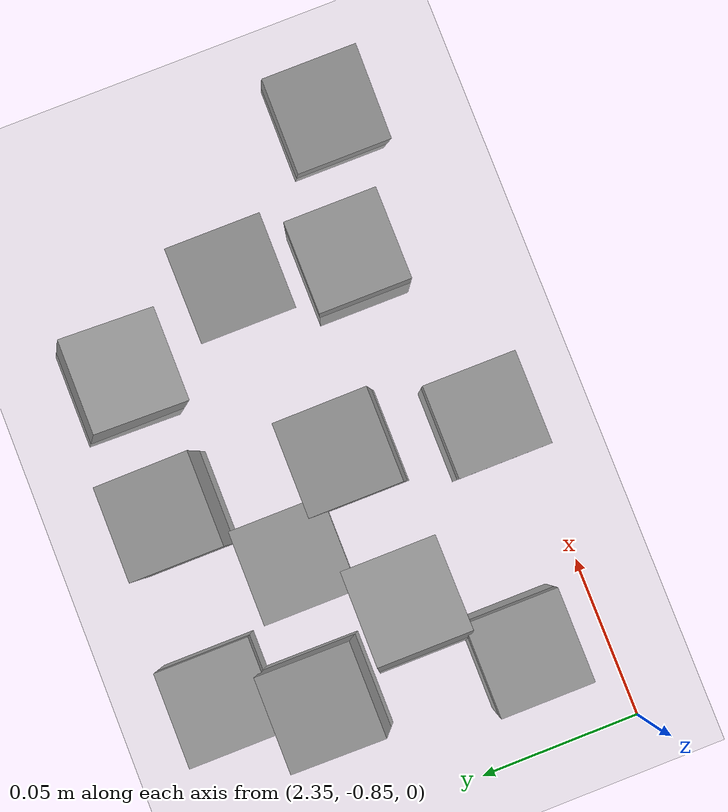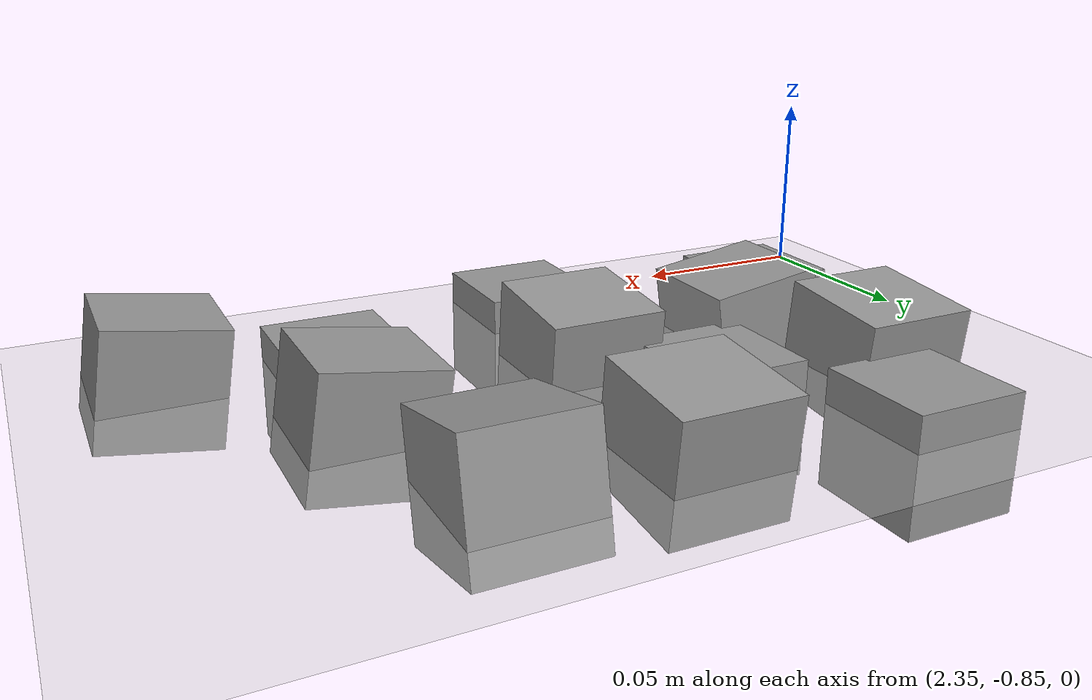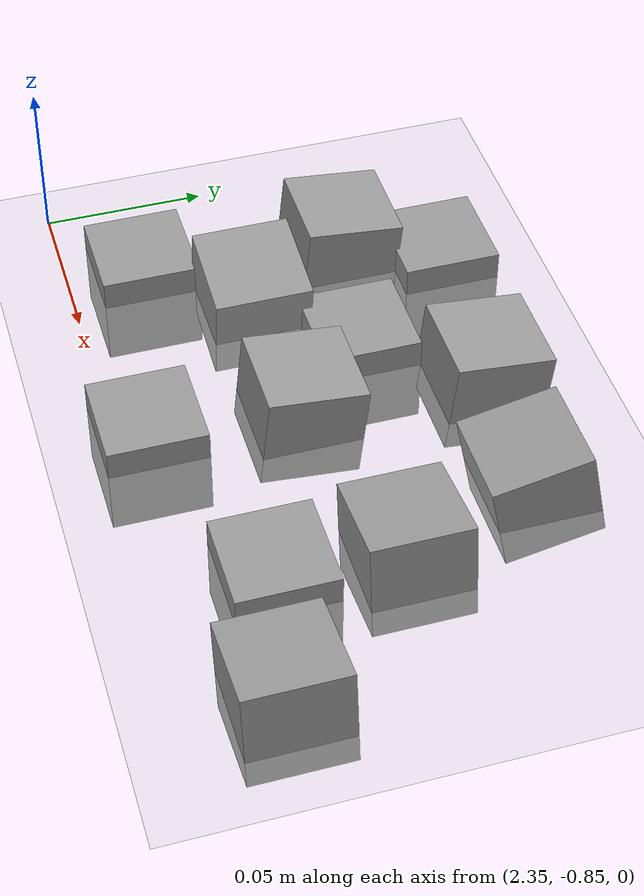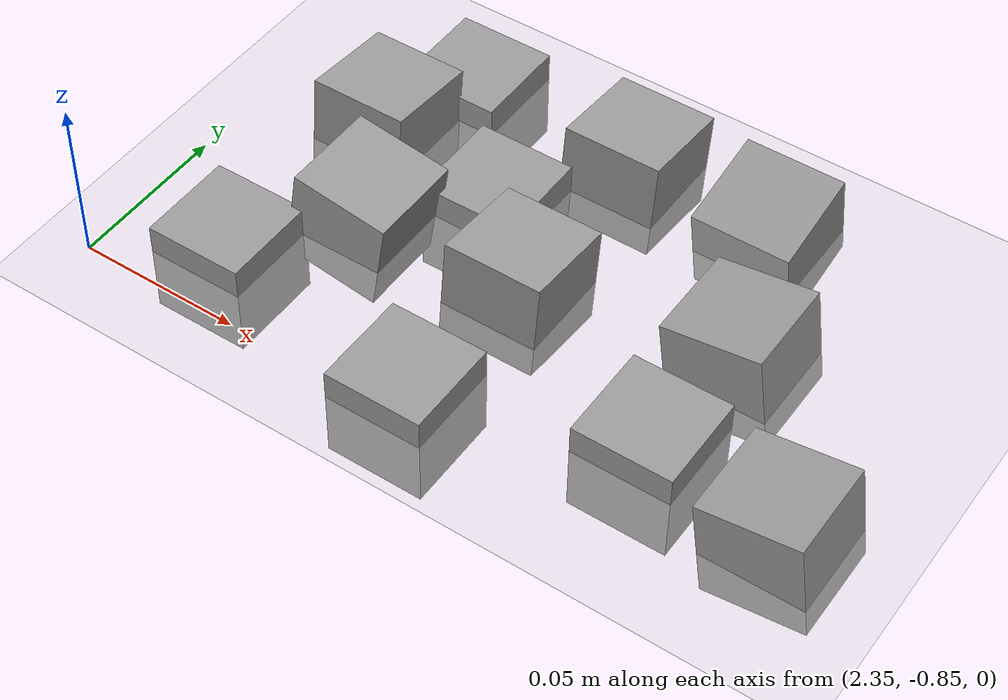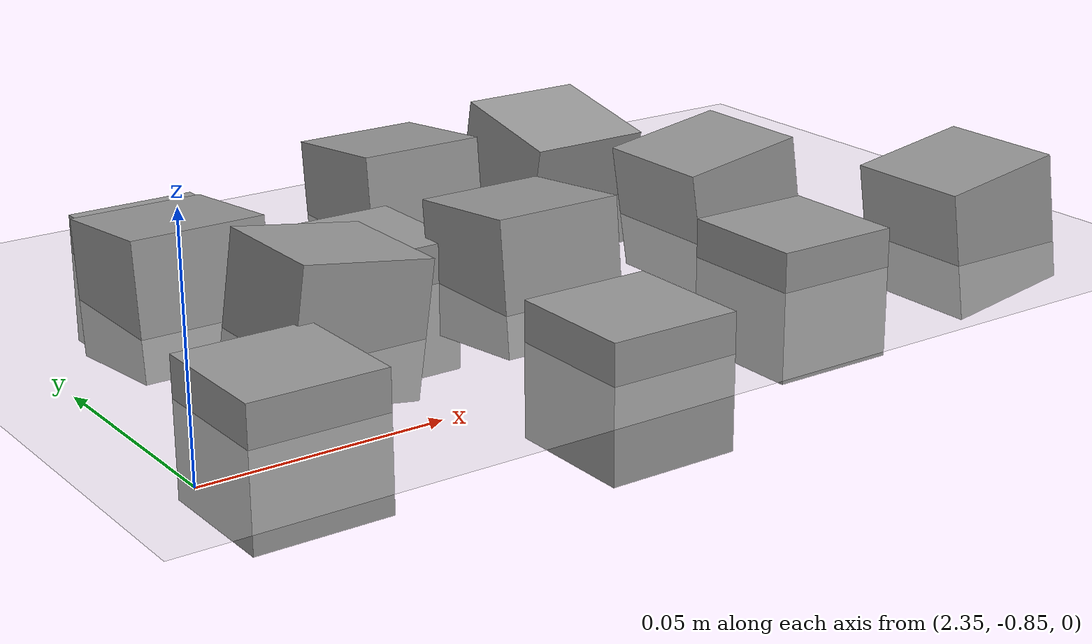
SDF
<sdf version="1.7">
 <world name="default">
  <model name="ground_plane">
   <static>1</static>
   <link name="link">
    <collision name="collision">
     <geometry><plane><normal>0 0 1</normal><size>100 100</size></plane></geometry>
     <surface><friction><ode><mu>100</mu><mu2>50</mu2></ode></friction></surface>
    </collision>
    <visual name="visual">
     <cast_shadows>0</cast_shadows>
     <geometry><plane><normal>0 0 1</normal><size>100 100</size></plane></geometry>
     <material>
      <script><uri>file://media/materials/scripts/gazebo.material</uri><name>Gazebo/Grey</name></script>
     </material>
    </visual>
   </link>
  </model>
  <model name="stone_road_6">
   <link name="link_0_clone_2_clone_0">
    <inertial>
     <mass>1</mass>
     <inertia>
      <ixx>0.166667</ixx>
      <ixy>0</ixy>
      <ixz>0</ixz>
      <iyy>0.166667</iyy>
      <iyz>0</iyz>
      <izz>0.166667</izz>
     </inertia>
    </inertial>
    <pose>0.026852 -0.0813 0.003778 0 0.15 0</pose>
    <kinematic>1</kinematic>
    <visual name="visual">
     <geometry><box><size>0.03 0.03 0.03</size></box></geometry>
     <material>
      <lighting>1</lighting>
      <script><uri>file://media/materials/scripts/gazebo.material</uri><name>Gazebo/Grey</name></script>
      <shader type="pixel"><normal_map>__default__</normal_map></shader>
      <ambient>0.3 0.3 0.3 1</ambient>
      <diffuse>0.7 0.7 0.7 1</diffuse>
      <specular>0.01 0.01 0.01 1</specular>
      <emissive>0 0 0 1</emissive>
     </material>
    </visual>
    <collision name="collision">
     <geometry><box><size>0.03 0.03 0.03</size></box></geometry>
     <surface>
      <friction>
       <ode><mu>1</mu><mu2>1</mu2><fdir1>0 0 0</fdir1><slip1>0</slip1><slip2>0</slip2></ode>
       <torsional>
        <coefficient>1</coefficient>
        <patch_radius>0</patch_radius>
        <surface_radius>0</surface_radius>
        <use_patch_radius>1</use_patch_radius>
        <ode><slip>0</slip></ode>
       </torsional>
      </friction>
      <bounce><restitution_coefficient>0</restitution_coefficient><threshold>1e+06</threshold></bounce>
      <contact>
       <collide_without_contact>0</collide_without_contact>
       <collide_without_contact_bitmask>1</collide_without_contact_bitmask>
       <collide_bitmask>1</collide_bitmask>
       <ode>
        <soft_cfm>0</soft_cfm>
        <soft_erp>0.2</soft_erp>
        <kp>1e+13</kp>
        <kd>1</kd>
        <max_vel>0.01</max_vel>
        <min_depth>0</min_depth>
       </ode>
       <bullet>
        <split_impulse>1</split_impulse>
        <split_impulse_penetration_threshold>-0.01</split_impulse_penetration_threshold>
        <soft_cfm>0</soft_cfm>
        <soft_erp>0.2</soft_erp>
        <kp>1e+13</kp>
        <kd>1</kd>
       </bullet>
      </contact>
     </surface>
    </collision>
   </link>
   <link name="link_0_clone_2_clone_2_clone_13_clone_clone_16_clone_14">
    <inertial>
     <mass>1</mass>
     <inertia>
      <ixx>0.166667</ixx>
      <ixy>0</ixy>
      <ixz>0</ixz>
      <iyy>0.166667</iyy>
      <iyz>0</iyz>
      <izz>0.166667</izz>
     </inertia>
    </inertial>
    <pose>0.051911 -0.054424 -0.006222 0 -0 0</pose>
    <kinematic>1</kinematic>
    <visual name="visual">
     <geometry><box><size>0.03 0.03 0.03</size></box></geometry>
     <material>
      <lighting>1</lighting>
      <script><uri>file://media/materials/scripts/gazebo.material</uri><name>Gazebo/Grey</name></script>
      <shader type="pixel"><normal_map>__default__</normal_map></shader>
      <ambient>0.3 0.3 0.3 1</ambient>
      <diffuse>0.7 0.7 0.7 1</diffuse>
      <specular>0.01 0.01 0.01 1</specular>
      <emissive>0 0 0 1</emissive>
     </material>
    </visual>
    <collision name="collision">
     <geometry><box><size>0.03 0.03 0.03</size></box></geometry>
     <surface>
      <friction>
       <ode><mu>1</mu><mu2>1</mu2><fdir1>0 0 0</fdir1><slip1>0</slip1><slip2>0</slip2></ode>
       <torsional>
        <coefficient>1</coefficient>
        <patch_radius>0</patch_radius>
        <surface_radius>0</surface_radius>
        <use_patch_radius>1</use_patch_radius>
        <ode><slip>0</slip></ode>
       </torsional>
      </friction>
      <bounce><restitution_coefficient>0</restitution_coefficient><threshold>1e+06</threshold></bounce>
      <contact>
       <collide_without_contact>0</collide_without_contact>
       <collide_without_contact_bitmask>1</collide_without_contact_bitmask>
       <collide_bitmask>1</collide_bitmask>
       <ode>
        <soft_cfm>0</soft_cfm>
        <soft_erp>0.2</soft_erp>
        <kp>1e+13</kp>
        <kd>1</kd>
        <max_vel>0.01</max_vel>
        <min_depth>0</min_depth>
       </ode>
       <bullet>
        <split_impulse>1</split_impulse>
        <split_impulse_penetration_threshold>-0.01</split_impulse_penetration_threshold>
        <soft_cfm>0</soft_cfm>
        <soft_erp>0.2</soft_erp>
        <kp>1e+13</kp>
        <kd>1</kd>
       </bullet>
      </contact>
     </surface>
    </collision>
   </link>
   <link name="link_0_clone_2_clone_2_clone_13_clone_clone_16_clone_15">
    <inertial>
     <mass>1</mass>
     <inertia>
      <ixx>0.166667</ixx>
      <ixy>0</ixy>
      <ixz>0</ixz>
      <iyy>0.166667</iyy>
      <iyz>0</iyz>
      <izz>0.166667</izz>
     </inertia>
    </inertial>
    <pose>0.133032 -0.103459 -0.006222 0 -0 0</pose>
    <kinematic>1</kinematic>
    <visual name="visual">
     <geometry><box><size>0.03 0.03 0.03</size></box></geometry>
     <material>
      <lighting>1</lighting>
      <script><uri>file://media/materials/scripts/gazebo.material</uri><name>Gazebo/Grey</name></script>
      <shader type="pixel"><normal_map>__default__</normal_map></shader>
      <ambient>0.3 0.3 0.3 1</ambient>
      <diffuse>0.7 0.7 0.7 1</diffuse>
      <specular>0.01 0.01 0.01 1</specular>
      <emissive>0 0 0 1</emissive>
     </material>
    </visual>
    <collision name="collision">
     <geometry><box><size>0.03 0.03 0.03</size></box></geometry>
     <surface>
      <friction>
       <ode><mu>1</mu><mu2>1</mu2><fdir1>0 0 0</fdir1><slip1>0</slip1><slip2>0</slip2></ode>
       <torsional>
        <coefficient>1</coefficient>
        <patch_radius>0</patch_radius>
        <surface_radius>0</surface_radius>
        <use_patch_radius>1</use_patch_radius>
        <ode><slip>0</slip></ode>
       </torsional>
      </friction>
      <bounce><restitution_coefficient>0</restitution_coefficient><threshold>1e+06</threshold></bounce>
      <contact>
       <collide_without_contact>0</collide_without_contact>
       <collide_without_contact_bitmask>1</collide_without_contact_bitmask>
       <collide_bitmask>1</collide_bitmask>
       <ode>
        <soft_cfm>0</soft_cfm>
        <soft_erp>0.2</soft_erp>
        <kp>1e+13</kp>
        <kd>1</kd>
        <max_vel>0.01</max_vel>
        <min_depth>0</min_depth>
       </ode>
       <bullet>
        <split_impulse>1</split_impulse>
        <split_impulse_penetration_threshold>-0.01</split_impulse_penetration_threshold>
        <soft_cfm>0</soft_cfm>
        <soft_erp>0.2</soft_erp>
        <kp>1e+13</kp>
        <kd>1</kd>
       </bullet>
      </contact>
     </surface>
    </collision>
   </link>
   <link name="link_0_clone_2_clone_2_clone_13_clone_clone_16_clone_16">
    <inertial>
     <mass>1</mass>
     <inertia>
      <ixx>0.166667</ixx>
      <ixy>0</ixy>
      <ixz>0</ixz>
      <iyy>0.166667</iyy>
      <iyz>0</iyz>
      <izz>0.166667</izz>
     </inertia>
    </inertial>
    <pose>0.071475 -0.124425 -0.006222 0 -0 0</pose>
    <kinematic>1</kinematic>
    <visual name="visual">
     <geometry><box><size>0.03 0.03 0.03</size></box></geometry>
     <material>
      <lighting>1</lighting>
      <script><uri>file://media/materials/scripts/gazebo.material</uri><name>Gazebo/Grey</name></script>
      <shader type="pixel"><normal_map>__default__</normal_map></shader>
      <ambient>0.3 0.3 0.3 1</ambient>
      <diffuse>0.7 0.7 0.7 1</diffuse>
      <specular>0.01 0.01 0.01 1</specular>
      <emissive>0 0 0 1</emissive>
     </material>
    </visual>
    <collision name="collision">
     <geometry><box><size>0.03 0.03 0.03</size></box></geometry>
     <surface>
      <friction>
       <ode><mu>1</mu><mu2>1</mu2><fdir1>0 0 0</fdir1><slip1>0</slip1><slip2>0</slip2></ode>
       <torsional>
        <coefficient>1</coefficient>
        <patch_radius>0</patch_radius>
        <surface_radius>0</surface_radius>
        <use_patch_radius>1</use_patch_radius>
        <ode><slip>0</slip></ode>
       </torsional>
      </friction>
      <bounce><restitution_coefficient>0</restitution_coefficient><threshold>1e+06</threshold></bounce>
      <contact>
       <collide_without_contact>0</collide_without_contact>
       <collide_without_contact_bitmask>1</collide_without_contact_bitmask>
       <collide_bitmask>1</collide_bitmask>
       <ode>
        <soft_cfm>0</soft_cfm>
        <soft_erp>0.2</soft_erp>
        <kp>1e+13</kp>
        <kd>1</kd>
        <max_vel>0.01</max_vel>
        <min_depth>0</min_depth>
       </ode>
       <bullet>
        <split_impulse>1</split_impulse>
        <split_impulse_penetration_threshold>-0.01</split_impulse_penetration_threshold>
        <soft_cfm>0</soft_cfm>
        <soft_erp>0.2</soft_erp>
        <kp>1e+13</kp>
        <kd>1</kd>
       </bullet>
      </contact>
     </surface>
    </collision>
   </link>
   <link name="link_0_clone_2_clone_2_clone_13_clone_clone_16_clone_6">
    <inertial>
     <mass>1</mass>
     <inertia>
      <ixx>0.166667</ixx>
      <ixy>0</ixy>
      <ixz>0</ixz>
      <iyy>0.166667</iyy>
      <iyz>0</iyz>
      <izz>0.166667</izz>
     </inertia>
    </inertial>
    <pose>0.020774 -0.018727 -0.006222 0 -0 0</pose>
    <kinematic>1</kinematic>
    <visual name="visual">
     <geometry><box><size>0.03 0.03 0.03</size></box></geometry>
     <material>
      <lighting>1</lighting>
      <script><uri>file://media/materials/scripts/gazebo.material</uri><name>Gazebo/Grey</name></script>
      <shader type="pixel"><normal_map>__default__</normal_map></shader>
      <ambient>0.3 0.3 0.3 1</ambient>
      <diffuse>0.7 0.7 0.7 1</diffuse>
      <specular>0.01 0.01 0.01 1</specular>
      <emissive>0 0 0 1</emissive>
     </material>
    </visual>
    <collision name="collision">
     <geometry><box><size>0.03 0.03 0.03</size></box></geometry>
     <surface>
      <friction>
       <ode><mu>1</mu><mu2>1</mu2><fdir1>0 0 0</fdir1><slip1>0</slip1><slip2>0</slip2></ode>
       <torsional>
        <coefficient>1</coefficient>
        <patch_radius>0</patch_radius>
        <surface_radius>0</surface_radius>
        <use_patch_radius>1</use_patch_radius>
        <ode><slip>0</slip></ode>
       </torsional>
      </friction>
      <bounce><restitution_coefficient>0</restitution_coefficient><threshold>1e+06</threshold></bounce>
      <contact>
       <collide_without_contact>0</collide_without_contact>
       <collide_without_contact_bitmask>1</collide_without_contact_bitmask>
       <collide_bitmask>1</collide_bitmask>
       <ode>
        <soft_cfm>0</soft_cfm>
        <soft_erp>0.2</soft_erp>
        <kp>1e+13</kp>
        <kd>1</kd>
        <max_vel>0.01</max_vel>
        <min_depth>0</min_depth>
       </ode>
       <bullet>
        <split_impulse>1</split_impulse>
        <split_impulse_penetration_threshold>-0.01</split_impulse_penetration_threshold>
        <soft_cfm>0</soft_cfm>
        <soft_erp>0.2</soft_erp>
        <kp>1e+13</kp>
        <kd>1</kd>
       </bullet>
      </contact>
     </surface>
    </collision>
   </link>
   <link name="link_0_clone_2_clone_2_clone_13_clone_clone_16_clone_7">
    <inertial>
     <mass>1</mass>
     <inertia>
      <ixx>0.166667</ixx>
      <ixy>0</ixy>
      <ixz>0</ixz>
      <iyy>0.166667</iyy>
      <iyz>0</iyz>
      <izz>0.166667</izz>
     </inertia>
    </inertial>
    <pose>0.000883 -0.109959 -0.006222 0 -0 0</pose>
    <kinematic>1</kinematic>
    <visual name="visual">
     <geometry><box><size>0.03 0.03 0.03</size></box></geometry>
     <material>
      <lighting>1</lighting>
      <script><uri>file://media/materials/scripts/gazebo.material</uri><name>Gazebo/Grey</name></script>
      <shader type="pixel"><normal_map>__default__</normal_map></shader>
      <ambient>0.3 0.3 0.3 1</ambient>
      <diffuse>0.7 0.7 0.7 1</diffuse>
      <specular>0.01 0.01 0.01 1</specular>
      <emissive>0 0 0 1</emissive>
     </material>
    </visual>
    <collision name="collision">
     <geometry><box><size>0.03 0.03 0.03</size></box></geometry>
     <surface>
      <friction>
       <ode><mu>1</mu><mu2>1</mu2><fdir1>0 0 0</fdir1><slip1>0</slip1><slip2>0</slip2></ode>
       <torsional>
        <coefficient>1</coefficient>
        <patch_radius>0</patch_radius>
        <surface_radius>0</surface_radius>
        <use_patch_radius>1</use_patch_radius>
        <ode><slip>0</slip></ode>
       </torsional>
      </friction>
      <bounce><restitution_coefficient>0</restitution_coefficient><threshold>1e+06</threshold></bounce>
      <contact>
       <collide_without_contact>0</collide_without_contact>
       <collide_without_contact_bitmask>1</collide_without_contact_bitmask>
       <collide_bitmask>1</collide_bitmask>
       <ode>
        <soft_cfm>0</soft_cfm>
        <soft_erp>0.2</soft_erp>
        <kp>1e+13</kp>
        <kd>1</kd>
        <max_vel>0.01</max_vel>
        <min_depth>0</min_depth>
       </ode>
       <bullet>
        <split_impulse>1</split_impulse>
        <split_impulse_penetration_threshold>-0.01</split_impulse_penetration_threshold>
        <soft_cfm>0</soft_cfm>
        <soft_erp>0.2</soft_erp>
        <kp>1e+13</kp>
        <kd>1</kd>
       </bullet>
      </contact>
     </surface>
    </collision>
   </link>
   <link name="link_0_clone_2_clone_2_clone_13_clone_clone_4">
    <inertial>
     <mass>1</mass>
     <inertia>
      <ixx>0.166667</ixx>
      <ixy>0</ixy>
      <ixz>0</ixz>
      <iyy>0.166667</iyy>
      <iyz>0</iyz>
      <izz>0.166667</izz>
     </inertia>
    </inertial>
    <pose>0.078198 -0.024053 0.003778 -0.1 0 0</pose>
    <kinematic>1</kinematic>
    <visual name="visual">
     <geometry><box><size>0.03 0.03 0.03</size></box></geometry>
     <material>
      <lighting>1</lighting>
      <script><uri>file://media/materials/scripts/gazebo.material</uri><name>Gazebo/Grey</name></script>
      <shader type="pixel"><normal_map>__default__</normal_map></shader>
      <ambient>0.3 0.3 0.3 1</ambient>
      <diffuse>0.7 0.7 0.7 1</diffuse>
      <specular>0.01 0.01 0.01 1</specular>
      <emissive>0 0 0 1</emissive>
     </material>
    </visual>
    <collision name="collision">
     <geometry><box><size>0.03 0.03 0.03</size></box></geometry>
     <surface>
      <friction>
       <ode><mu>1</mu><mu2>1</mu2><fdir1>0 0 0</fdir1><slip1>0</slip1><slip2>0</slip2></ode>
       <torsional>
        <coefficient>1</coefficient>
        <patch_radius>0</patch_radius>
        <surface_radius>0</surface_radius>
        <use_patch_radius>1</use_patch_radius>
        <ode><slip>0</slip></ode>
       </torsional>
      </friction>
      <bounce><restitution_coefficient>0</restitution_coefficient><threshold>1e+06</threshold></bounce>
      <contact>
       <collide_without_contact>0</collide_without_contact>
       <collide_without_contact_bitmask>1</collide_without_contact_bitmask>
       <collide_bitmask>1</collide_bitmask>
       <ode>
        <soft_cfm>0</soft_cfm>
        <soft_erp>0.2</soft_erp>
        <kp>1e+13</kp>
        <kd>1</kd>
        <max_vel>0.01</max_vel>
        <min_depth>0</min_depth>
       </ode>
       <bullet>
        <split_impulse>1</split_impulse>
        <split_impulse_penetration_threshold>-0.01</split_impulse_penetration_threshold>
        <soft_cfm>0</soft_cfm>
        <soft_erp>0.2</soft_erp>
        <kp>1e+13</kp>
        <kd>1</kd>
       </bullet>
      </contact>
     </surface>
    </collision>
   </link>
   <link name="link_0_clone_2_clone_2_clone_13_clone_clone_5">
    <inertial>
     <mass>1</mass>
     <inertia>
      <ixx>0.166667</ixx>
      <ixy>0</ixy>
      <ixz>0</ixz>
      <iyy>0.166667</iyy>
      <iyz>0</iyz>
      <izz>0.166667</izz>
     </inertia>
    </inertial>
    <pose>0.076743 -0.079785 0.003778 -0.1 0 0</pose>
    <kinematic>1</kinematic>
    <visual name="visual">
     <geometry><box><size>0.03 0.03 0.03</size></box></geometry>
     <material>
      <lighting>1</lighting>
      <script><uri>file://media/materials/scripts/gazebo.material</uri><name>Gazebo/Grey</name></script>
      <shader type="pixel"><normal_map>__default__</normal_map></shader>
      <ambient>0.3 0.3 0.3 1</ambient>
      <diffuse>0.7 0.7 0.7 1</diffuse>
      <specular>0.01 0.01 0.01 1</specular>
      <emissive>0 0 0 1</emissive>
     </material>
    </visual>
    <collision name="collision">
     <geometry><box><size>0.03 0.03 0.03</size></box></geometry>
     <surface>
      <friction>
       <ode><mu>1</mu><mu2>1</mu2><fdir1>0 0 0</fdir1><slip1>0</slip1><slip2>0</slip2></ode>
       <torsional>
        <coefficient>1</coefficient>
        <patch_radius>0</patch_radius>
        <surface_radius>0</surface_radius>
        <use_patch_radius>1</use_patch_radius>
        <ode><slip>0</slip></ode>
       </torsional>
      </friction>
      <bounce><restitution_coefficient>0</restitution_coefficient><threshold>1e+06</threshold></bounce>
      <contact>
       <collide_without_contact>0</collide_without_contact>
       <collide_without_contact_bitmask>1</collide_without_contact_bitmask>
       <collide_bitmask>1</collide_bitmask>
       <ode>
        <soft_cfm>0</soft_cfm>
        <soft_erp>0.2</soft_erp>
        <kp>1e+13</kp>
        <kd>1</kd>
        <max_vel>0.01</max_vel>
        <min_depth>0</min_depth>
       </ode>
       <bullet>
        <split_impulse>1</split_impulse>
        <split_impulse_penetration_threshold>-0.01</split_impulse_penetration_threshold>
        <soft_cfm>0</soft_cfm>
        <soft_erp>0.2</soft_erp>
        <kp>1e+13</kp>
        <kd>1</kd>
       </bullet>
      </contact>
     </surface>
    </collision>
   </link>
   <link name="link_0_clone_2_clone_2_clone_13_clone_clone_6">
    <inertial>
     <mass>1</mass>
     <inertia>
      <ixx>0.166667</ixx>
      <ixy>0</ixy>
      <ixz>0</ixz>
      <iyy>0.166667</iyy>
      <iyz>0</iyz>
      <izz>0.166667</izz>
     </inertia>
    </inertial>
    <pose>0.009445 -0.048118 0.003778 -0.1 0 0</pose>
    <kinematic>1</kinematic>
    <visual name="visual">
     <geometry><box><size>0.03 0.03 0.03</size></box></geometry>
     <material>
      <lighting>1</lighting>
      <script><uri>file://media/materials/scripts/gazebo.material</uri><name>Gazebo/Grey</name></script>
      <shader type="pixel"><normal_map>__default__</normal_map></shader>
      <ambient>0.3 0.3 0.3 1</ambient>
      <diffuse>0.7 0.7 0.7 1</diffuse>
      <specular>0.01 0.01 0.01 1</specular>
      <emissive>0 0 0 1</emissive>
     </material>
    </visual>
    <collision name="collision">
     <geometry><box><size>0.03 0.03 0.03</size></box></geometry>
     <surface>
      <friction>
       <ode><mu>1</mu><mu2>1</mu2><fdir1>0 0 0</fdir1><slip1>0</slip1><slip2>0</slip2></ode>
       <torsional>
        <coefficient>1</coefficient>
        <patch_radius>0</patch_radius>
        <surface_radius>0</surface_radius>
        <use_patch_radius>1</use_patch_radius>
        <ode><slip>0</slip></ode>
       </torsional>
      </friction>
      <bounce><restitution_coefficient>0</restitution_coefficient><threshold>1e+06</threshold></bounce>
      <contact>
       <collide_without_contact>0</collide_without_contact>
       <collide_without_contact_bitmask>1</collide_without_contact_bitmask>
       <collide_bitmask>1</collide_bitmask>
       <ode>
        <soft_cfm>0</soft_cfm>
        <soft_erp>0.2</soft_erp>
        <kp>1e+13</kp>
        <kd>1</kd>
        <max_vel>0.01</max_vel>
        <min_depth>0</min_depth>
       </ode>
       <bullet>
        <split_impulse>1</split_impulse>
        <split_impulse_penetration_threshold>-0.01</split_impulse_penetration_threshold>
        <soft_cfm>0</soft_cfm>
        <soft_erp>0.2</soft_erp>
        <kp>1e+13</kp>
        <kd>1</kd>
       </bullet>
      </contact>
     </surface>
    </collision>
   </link>
   <link name="link_0_clone_2_clone_2_clone_5">
    <inertial>
     <mass>1</mass>
     <inertia>
      <ixx>0.166667</ixx>
      <ixy>0</ixy>
      <ixz>0</ixz>
      <iyy>0.166667</iyy>
      <iyz>0</iyz>
      <izz>0.166667</izz>
     </inertia>
    </inertial>
    <pose>0.13842 -0.067468 0.003778 0 -0.15 0</pose>
    <kinematic>1</kinematic>
    <visual name="visual">
     <geometry><box><size>0.03 0.03 0.03</size></box></geometry>
     <material>
      <lighting>1</lighting>
      <script><uri>file://media/materials/scripts/gazebo.material</uri><name>Gazebo/Grey</name></script>
      <shader type="pixel"><normal_map>__default__</normal_map></shader>
      <ambient>0.3 0.3 0.3 1</ambient>
      <diffuse>0.7 0.7 0.7 1</diffuse>
      <specular>0.01 0.01 0.01 1</specular>
      <emissive>0 0 0 1</emissive>
     </material>
    </visual>
    <collision name="collision">
     <geometry><box><size>0.03 0.03 0.03</size></box></geometry>
     <surface>
      <friction>
       <ode><mu>1</mu><mu2>1</mu2><fdir1>0 0 0</fdir1><slip1>0</slip1><slip2>0</slip2></ode>
       <torsional>
        <coefficient>1</coefficient>
        <patch_radius>0</patch_radius>
        <surface_radius>0</surface_radius>
        <use_patch_radius>1</use_patch_radius>
        <ode><slip>0</slip></ode>
       </torsional>
      </friction>
      <bounce><restitution_coefficient>0</restitution_coefficient><threshold>1e+06</threshold></bounce>
      <contact>
       <collide_without_contact>0</collide_without_contact>
       <collide_without_contact_bitmask>1</collide_without_contact_bitmask>
       <collide_bitmask>1</collide_bitmask>
       <ode>
        <soft_cfm>0</soft_cfm>
        <soft_erp>0.2</soft_erp>
        <kp>1e+13</kp>
        <kd>1</kd>
        <max_vel>0.01</max_vel>
        <min_depth>0</min_depth>
       </ode>
       <bullet>
        <split_impulse>1</split_impulse>
        <split_impulse_penetration_threshold>-0.01</split_impulse_penetration_threshold>
        <soft_cfm>0</soft_cfm>
        <soft_erp>0.2</soft_erp>
        <kp>1e+13</kp>
        <kd>1</kd>
       </bullet>
      </contact>
     </surface>
    </collision>
   </link>
   <link name="link_0_clone_2_clone_2_clone_7">
    <inertial>
     <mass>1</mass>
     <inertia>
      <ixx>0.166667</ixx>
      <ixy>0</ixy>
      <ixz>0</ixz>
      <iyy>0.166667</iyy>
      <iyz>0</iyz>
      <izz>0.166667</izz>
     </inertia>
    </inertial>
    <pose>0.175499 -0.112442 0.003778 0 -0.15 0</pose>
    <kinematic>1</kinematic>
    <visual name="visual">
     <geometry><box><size>0.03 0.03 0.03</size></box></geometry>
     <material>
      <lighting>1</lighting>
      <script><uri>file://media/materials/scripts/gazebo.material</uri><name>Gazebo/Grey</name></script>
      <shader type="pixel"><normal_map>__default__</normal_map></shader>
      <ambient>0.3 0.3 0.3 1</ambient>
      <diffuse>0.7 0.7 0.7 1</diffuse>
      <specular>0.01 0.01 0.01 1</specular>
      <emissive>0 0 0 1</emissive>
     </material>
    </visual>
    <collision name="collision">
     <geometry><box><size>0.03 0.03 0.03</size></box></geometry>
     <surface>
      <friction>
       <ode><mu>1</mu><mu2>1</mu2><fdir1>0 0 0</fdir1><slip1>0</slip1><slip2>0</slip2></ode>
       <torsional>
        <coefficient>1</coefficient>
        <patch_radius>0</patch_radius>
        <surface_radius>0</surface_radius>
        <use_patch_radius>1</use_patch_radius>
        <ode><slip>0</slip></ode>
       </torsional>
      </friction>
      <bounce><restitution_coefficient>0</restitution_coefficient><threshold>1e+06</threshold></bounce>
      <contact>
       <collide_without_contact>0</collide_without_contact>
       <collide_without_contact_bitmask>1</collide_without_contact_bitmask>
       <collide_bitmask>1</collide_bitmask>
       <ode>
        <soft_cfm>0</soft_cfm>
        <soft_erp>0.2</soft_erp>
        <kp>1e+13</kp>
        <kd>1</kd>
        <max_vel>0.01</max_vel>
        <min_depth>0</min_depth>
       </ode>
       <bullet>
        <split_impulse>1</split_impulse>
        <split_impulse_penetration_threshold>-0.01</split_impulse_penetration_threshold>
        <soft_cfm>0</soft_cfm>
        <soft_erp>0.2</soft_erp>
        <kp>1e+13</kp>
        <kd>1</kd>
       </bullet>
      </contact>
     </surface>
    </collision>
   </link>
   <link name="link_0_clone_9">
    <inertial>
     <mass>1</mass>
     <inertia>
      <ixx>0.166667</ixx>
      <ixy>0</ixy>
      <ixz>0</ixz>
      <iyy>0.166667</iyy>
      <iyz>0</iyz>
      <izz>0.166667</izz>
     </inertia>
    </inertial>
    <pose>0.122173 -0.025452 0.003778 0.2 -0 0</pose>
    <kinematic>1</kinematic>
    <visual name="visual">
     <geometry><box><size>0.03 0.03 0.03</size></box></geometry>
     <material>
      <lighting>1</lighting>
      <script><uri>file://media/materials/scripts/gazebo.material</uri><name>Gazebo/Grey</name></script>
      <shader type="pixel"><normal_map>__default__</normal_map></shader>
      <ambient>0.3 0.3 0.3 1</ambient>
      <diffuse>0.7 0.7 0.7 1</diffuse>
      <specular>0.01 0.01 0.01 1</specular>
      <emissive>0 0 0 1</emissive>
     </material>
    </visual>
    <collision name="collision">
     <geometry><box><size>0.03 0.03 0.03</size></box></geometry>
     <surface>
      <friction>
       <ode><mu>1</mu><mu2>1</mu2><fdir1>0 0 0</fdir1><slip1>0</slip1><slip2>0</slip2></ode>
       <torsional>
        <coefficient>1</coefficient>
        <patch_radius>0</patch_radius>
        <surface_radius>0</surface_radius>
        <use_patch_radius>1</use_patch_radius>
        <ode><slip>0</slip></ode>
       </torsional>
      </friction>
      <bounce><restitution_coefficient>0</restitution_coefficient><threshold>1e+06</threshold></bounce>
      <contact>
       <collide_without_contact>0</collide_without_contact>
       <collide_without_contact_bitmask>1</collide_without_contact_bitmask>
       <collide_bitmask>1</collide_bitmask>
       <ode>
        <soft_cfm>0</soft_cfm>
        <soft_erp>0.2</soft_erp>
        <kp>1e+13</kp>
        <kd>1</kd>
        <max_vel>0.01</max_vel>
        <min_depth>0</min_depth>
       </ode>
       <bullet>
        <split_impulse>1</split_impulse>
        <split_impulse_penetration_threshold>-0.01</split_impulse_penetration_threshold>
        <soft_cfm>0</soft_cfm>
        <soft_erp>0.2</soft_erp>
        <kp>1e+13</kp>
        <kd>1</kd>
       </bullet>
      </contact>
     </surface>
    </collision>
   </link>
   <static>0</static>
   <pose>2.379 -0.715905 -0 0 -0 0</pose>
  </model>
 </world>
</sdf>
